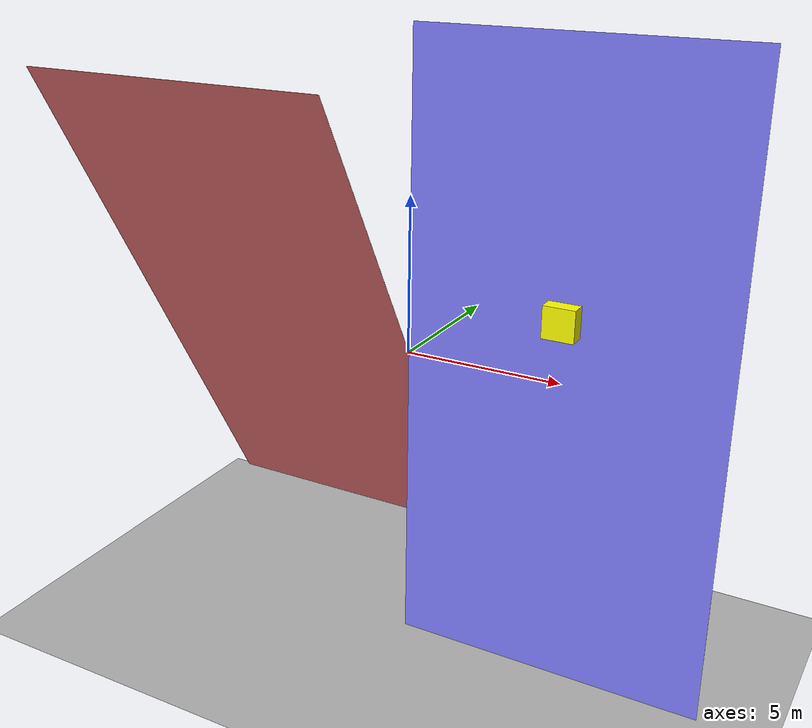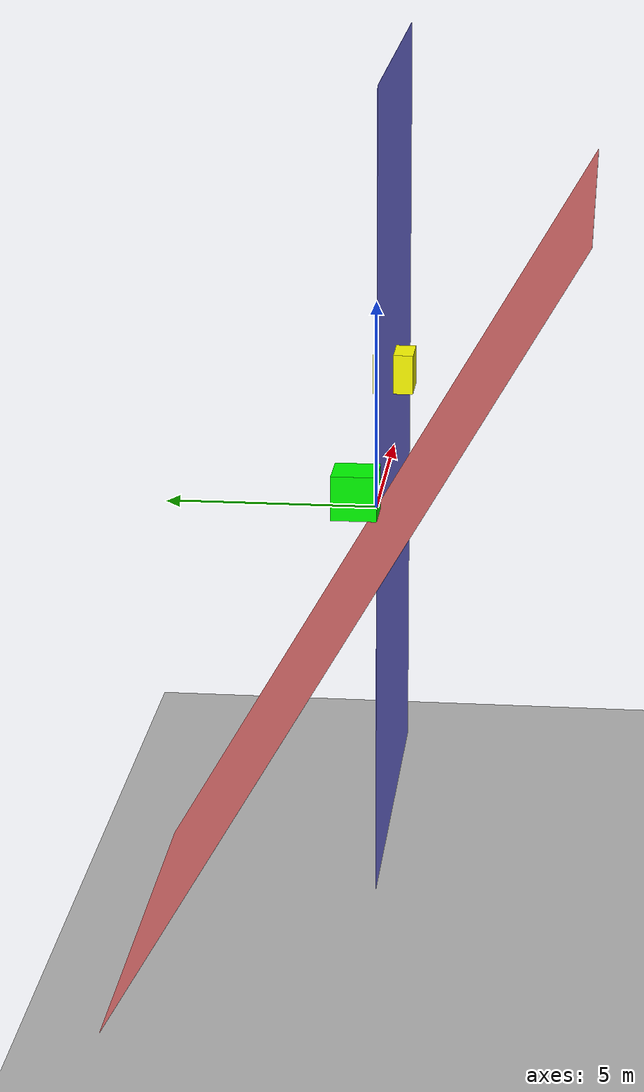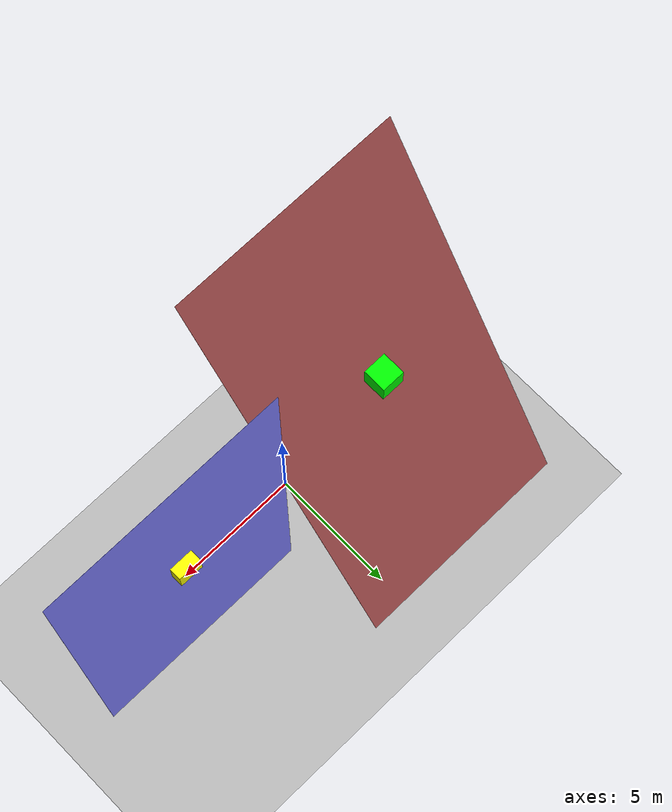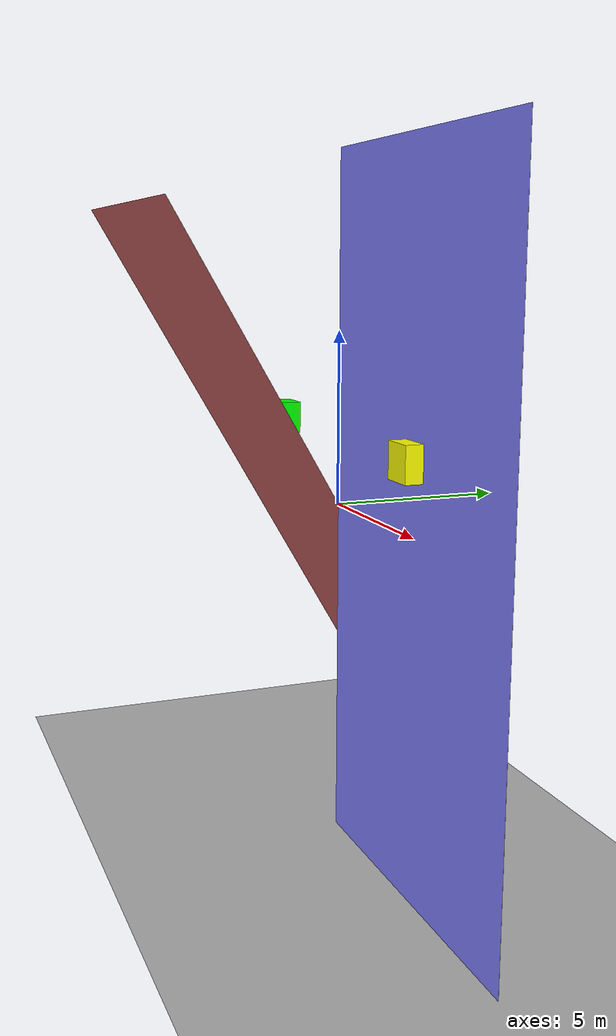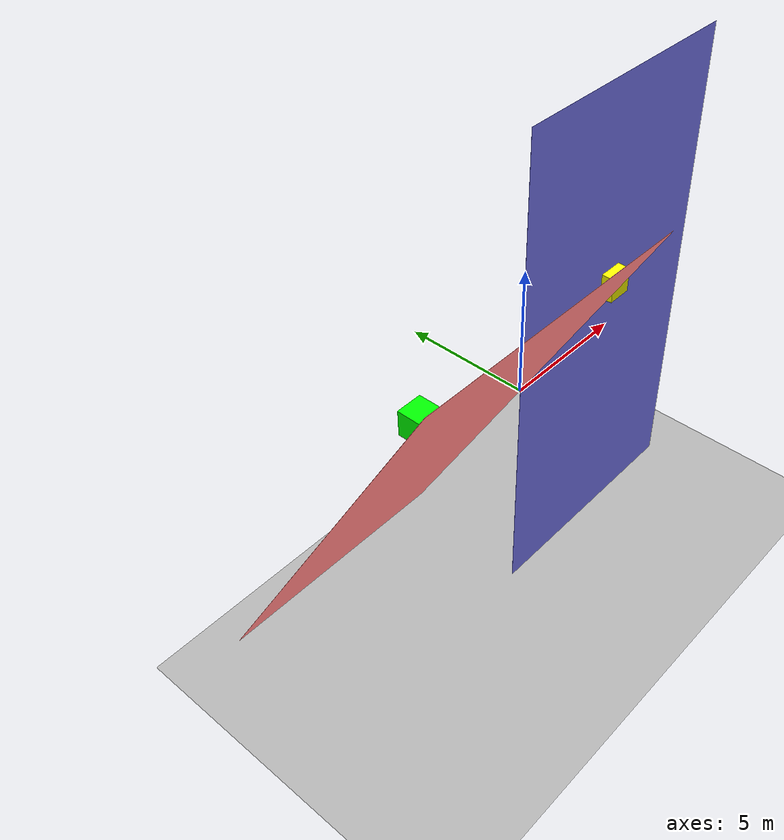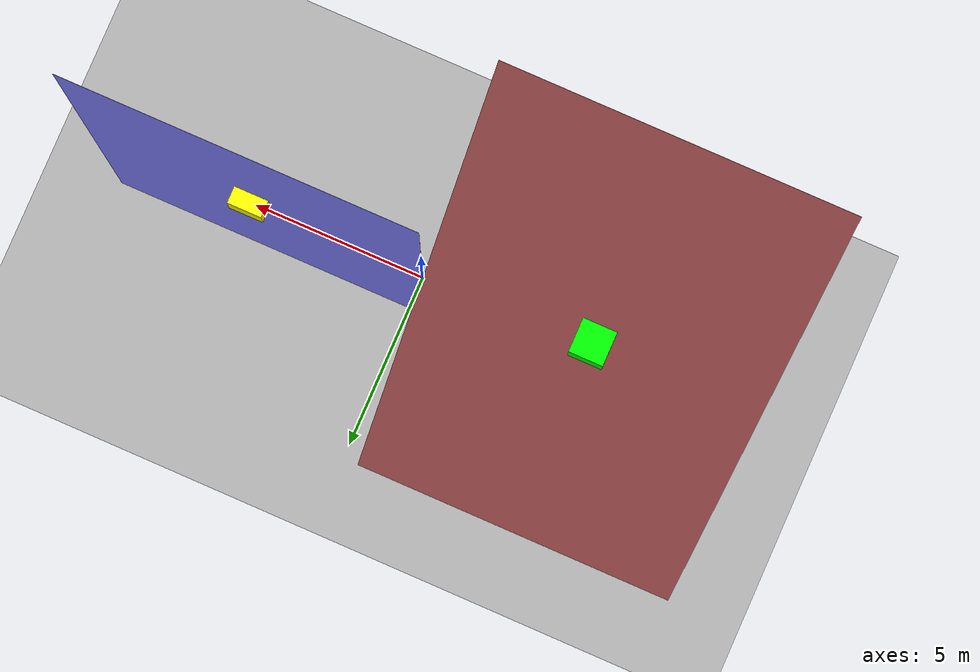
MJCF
<mujoco>
  <option gravity="0 0 -9.81"/>
  <worldbody>
    <light diffuse="0.5 0.5 0.5" pos="0 0 5" dir="0 0 -1"/>

    <!-- Ground Plane -->
    <body name="ground" pos="0 0 -10">
      <geom type="plane" size="50 50 0.1" rgba="0.7 0.7 0.7 1" friction="1 1 1"/>
    </body>

    <!-- Rough Incline (shallow angle) -->
    <body name="rough_incline" pos="-5 0 0">
      <!-- 30-degree incline -->
      <geom type="plane" size="5 10 0.1" rgba="1 0.5 0.5 1"
            friction="0.9 0.9 0.9" quat="0.5 0.866 0 0"/>
    </body>

    <!-- Smooth Incline (steeper angle) -->
    <body name="smooth_incline" pos="5 0 0">
      <!-- 45-degree incline -->
      <geom type="plane" size="5 10 0.1" rgba="0.5 0.5 1 1"
            friction="0.2 0.2 0.2" quat="0.7071 0.7071 0 0"/>
    </body>

    <!-- Block on Rough Incline -->
    <body name="block_rough" pos="-5 0 2">
      <geom type="box" size="0.5 0.5 0.5" density="500" rgba="0 1 0 1"/>
      <joint type="free"/>
    </body>

    <!-- Block on Smooth Incline -->
    <body name="block_smooth" pos="5 0 2">
      <geom type="box" size="0.5 0.5 0.5" density="500" rgba="1 1 0 1"/>
      <joint type="free"/>
    </body>
  </worldbody>
</mujoco>
